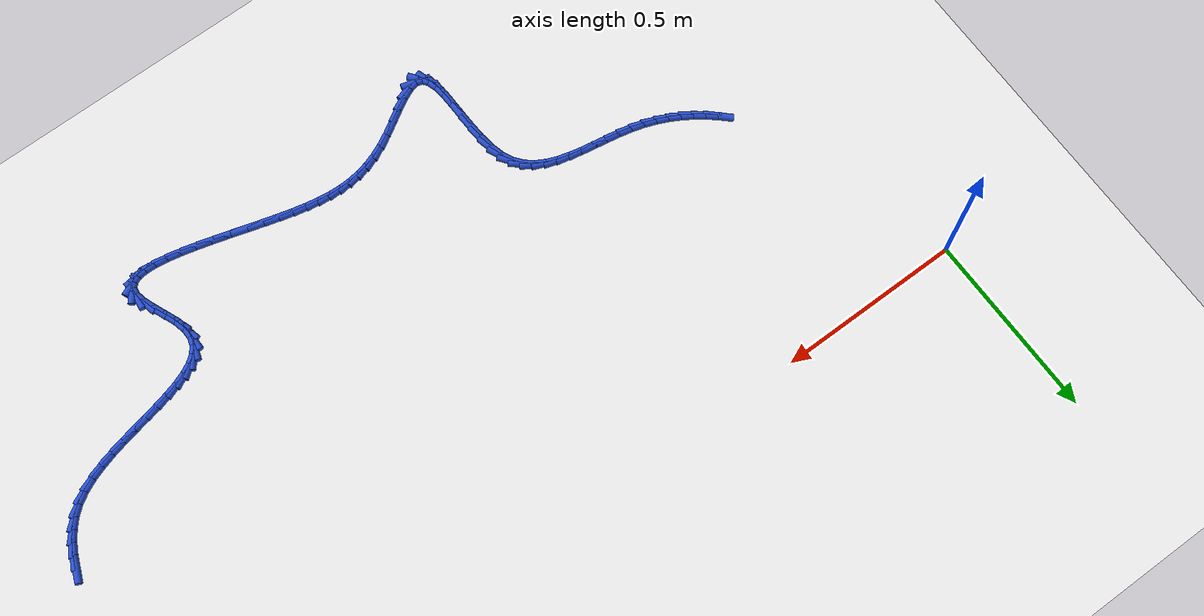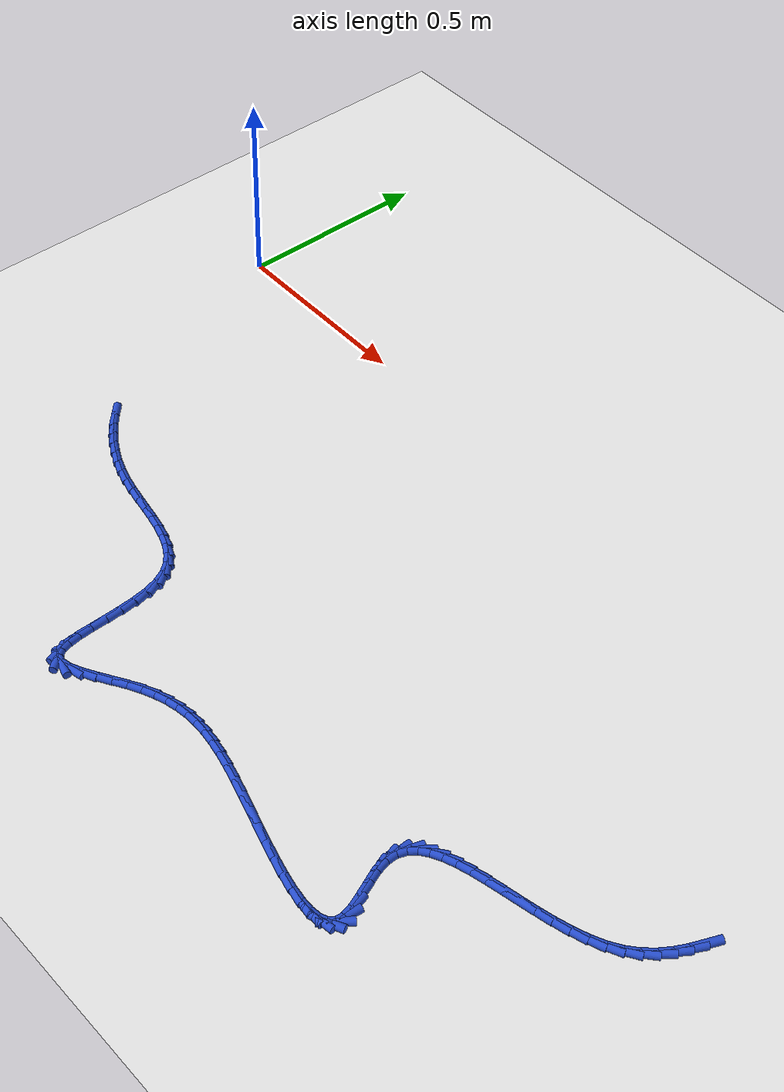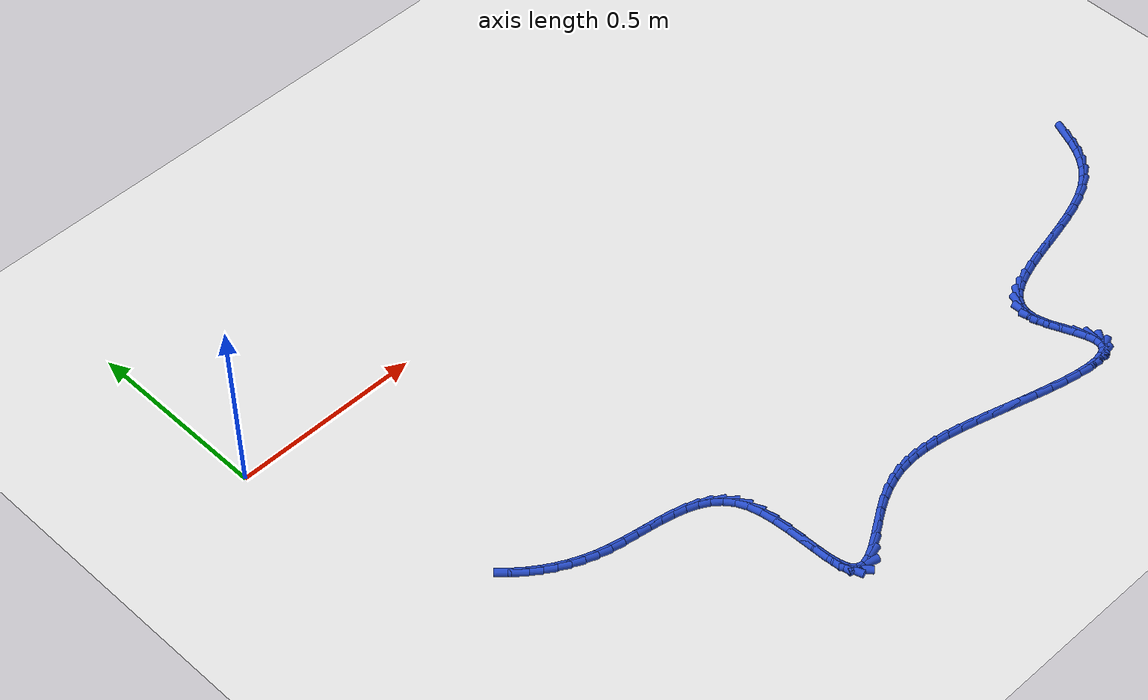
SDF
<sdf version="1.6">
 <world name="default">
  <model name="ground_plane">
   <static>1</static>
   <link name="link">
    <collision name="collision">
     <geometry><plane><normal>0 0 1</normal><size>100 100</size></plane></geometry>
     <surface><friction><ode><mu>100</mu><mu2>50</mu2></ode></friction></surface>
    </collision>
    <visual name="visual">
     <cast_shadows>0</cast_shadows>
     <geometry><plane><normal>0 0 1</normal><size>100 100</size></plane></geometry>
     <material>
      <script><uri>file://media/materials/scripts/gazebo.material</uri><name>Gazebo/WhiteGlow</name></script>
     </material>
    </visual>
   </link>
  </model>
  <model name="line">
   <link name="link_145">
    <pose>2.200022482165315 -0.6206383247628776 0.01 0 1.57 1.1768772257016513</pose>
    <collision name="collision">
     <geometry><cylinder><radius>0.01</radius><length>0.08</length></cylinder></geometry>
    </collision>
    <visual name="visual">
     <material>
      <script><name>Gazebo/Blue</name><uri>file://media/materials/scripts/gazebo.material</uri></script>
     </material>
     <geometry><cylinder><radius>0.01</radius><length>0.08</length></cylinder></geometry>
    </visual>
   </link>
   <link name="link_146">
    <pose>2.187884925814265 -0.6498401591014769 0.01 0 1.57 1.0892584199540072</pose>
    <collision name="collision">
     <geometry><cylinder><radius>0.01</radius><length>0.08</length></cylinder></geometry>
    </collision>
    <visual name="visual">
     <material>
      <script><name>Gazebo/Blue</name><uri>file://media/materials/scripts/gazebo.material</uri></script>
     </material>
     <geometry><cylinder><radius>0.01</radius><length>0.08</length></cylinder></geometry>
    </visual>
   </link>
   <link name="link_147">
    <pose>2.1732663746896717 -0.6778146523762547 0.01 0 1.57 0.982221564828243</pose>
    <collision name="collision">
     <geometry><cylinder><radius>0.01</radius><length>0.08</length></cylinder></geometry>
    </collision>
    <visual name="visual">
     <material>
      <script><name>Gazebo/Blue</name><uri>file://media/materials/scripts/gazebo.material</uri></script>
     </material>
     <geometry><cylinder><radius>0.01</radius><length>0.08</length></cylinder></geometry>
    </visual>
   </link>
   <link name="link_148">
    <pose>2.1557402777176877 -0.7040712357389001 0.01 0 1.57 0.8562664024261886</pose>
    <collision name="collision">
     <geometry><cylinder><radius>0.01</radius><length>0.08</length></cylinder></geometry>
    </collision>
    <visual name="visual">
     <material>
      <script><name>Gazebo/Blue</name><uri>file://media/materials/scripts/gazebo.material</uri></script>
     </material>
     <geometry><cylinder><radius>0.01</radius><length>0.08</length></cylinder></geometry>
    </visual>
   </link>
   <link name="link_149">
    <pose>2.134880083824467 -0.7281193403411019 0.01 0 1.57 0.7143456421942435</pose>
    <collision name="collision">
     <geometry><cylinder><radius>0.01</radius><length>0.08</length></cylinder></geometry>
    </collision>
    <visual name="visual">
     <material>
      <script><name>Gazebo/Blue</name><uri>file://media/materials/scripts/gazebo.material</uri></script>
     </material>
     <geometry><cylinder><radius>0.01</radius><length>0.08</length></cylinder></geometry>
    </visual>
   </link>
   <link name="link_150">
    <pose>2.110259241936164 -0.7494683973345496 0.01 0 1.57 0.5661594965031077</pose>
    <collision name="collision">
     <geometry><cylinder><radius>0.01</radius><length>0.08</length></cylinder></geometry>
    </collision>
    <visual name="visual">
     <material>
      <script><name>Gazebo/Blue</name><uri>file://media/materials/scripts/gazebo.material</uri></script>
     </material>
     <geometry><cylinder><radius>0.01</radius><length>0.08</length></cylinder></geometry>
    </visual>
   </link>
   <link name="link_151">
    <pose>2.081555521179482 -0.7677114343285509 0.01 0 1.57 0.44309876914996227</pose>
    <collision name="collision">
     <geometry><cylinder><radius>0.01</radius><length>0.08</length></cylinder></geometry>
    </collision>
    <visual name="visual">
     <material>
      <script><name>Gazebo/Blue</name><uri>file://media/materials/scripts/gazebo.material</uri></script>
     </material>
     <geometry><cylinder><radius>0.01</radius><length>0.08</length></cylinder></geometry>
    </visual>
   </link>
   <link name="link_152">
    <pose>2.049216699643901 -0.7830585216651116 0.01 0 1.57 0.35238683183108166</pose>
    <collision name="collision">
     <geometry><cylinder><radius>0.01</radius><length>0.08</length></cylinder></geometry>
    </collision>
    <visual name="visual">
     <material>
      <script><name>Gazebo/Blue</name><uri>file://media/materials/scripts/gazebo.material</uri></script>
     </material>
     <geometry><cylinder><radius>0.01</radius><length>0.08</length></cylinder></geometry>
    </visual>
   </link>
   <link name="link_153">
    <pose>2.0140352916266697 -0.795995982278073 0.01 0 1.57 0.28766978232681134</pose>
    <collision name="collision">
     <geometry><cylinder><radius>0.01</radius><length>0.08</length></cylinder></geometry>
    </collision>
    <visual name="visual">
     <material>
      <script><name>Gazebo/Blue</name><uri>file://media/materials/scripts/gazebo.material</uri></script>
     </material>
     <geometry><cylinder><radius>0.01</radius><length>0.08</length></cylinder></geometry>
    </visual>
   </link>
   <link name="link_154">
    <pose>1.9768054293250379 -0.8070114355971424 0.01 0 1.57 0.2440006502419656</pose>
    <collision name="collision">
     <geometry><cylinder><radius>0.01</radius><length>0.08</length></cylinder></geometry>
    </collision>
    <visual name="visual">
     <material>
      <script><name>Gazebo/Blue</name><uri>file://media/materials/scripts/gazebo.material</uri></script>
     </material>
     <geometry><cylinder><radius>0.01</radius><length>0.08</length></cylinder></geometry>
    </visual>
   </link>
   <link name="link_155">
    <pose>1.938321244936255 -0.8165925010520273 0.01 0 1.57 0.21817930192003523</pose>
    <collision name="collision">
     <geometry><cylinder><radius>0.01</radius><length>0.08</length></cylinder></geometry>
    </collision>
    <visual name="visual">
     <material>
      <script><name>Gazebo/Blue</name><uri>file://media/materials/scripts/gazebo.material</uri></script>
     </material>
     <geometry><cylinder><radius>0.01</radius><length>0.08</length></cylinder></geometry>
    </visual>
   </link>
   <link name="link_156">
    <pose>1.8993768706575718 -0.8252267980724354 0.01 0 1.57 0.2086525430279309</pose>
    <collision name="collision">
     <geometry><cylinder><radius>0.01</radius><length>0.08</length></cylinder></geometry>
    </collision>
    <visual name="visual">
     <material>
      <script><name>Gazebo/Blue</name><uri>file://media/materials/scripts/gazebo.material</uri></script>
     </material>
     <geometry><cylinder><radius>0.01</radius><length>0.08</length></cylinder></geometry>
    </visual>
   </link>
   <link name="link_157">
    <pose>1.8607664386862368 -0.8334019460880737 0.01 0 1.57 0.21546852170306519</pose>
    <collision name="collision">
     <geometry><cylinder><radius>0.01</radius><length>0.08</length></cylinder></geometry>
    </collision>
    <visual name="visual">
     <material>
      <script><name>Gazebo/Blue</name><uri>file://media/materials/scripts/gazebo.material</uri></script>
     </material>
     <geometry><cylinder><radius>0.01</radius><length>0.08</length></cylinder></geometry>
    </visual>
   </link>
   <link name="link_158">
    <pose>1.8232840812195008 -0.8416055645286503 0.01 0 1.57 0.24046547054014067</pose>
    <collision name="collision">
     <geometry><cylinder><radius>0.01</radius><length>0.08</length></cylinder></geometry>
    </collision>
    <visual name="visual">
     <material>
      <script><name>Gazebo/Blue</name><uri>file://media/materials/scripts/gazebo.material</uri></script>
     </material>
     <geometry><cylinder><radius>0.01</radius><length>0.08</length></cylinder></geometry>
    </visual>
   </link>
   <link name="link_159">
    <pose>1.7877239304546126 -0.8503252728238723 0.01 0 1.57 0.2878292113030736</pose>
    <collision name="collision">
     <geometry><cylinder><radius>0.01</radius><length>0.08</length></cylinder></geometry>
    </collision>
    <visual name="visual">
     <material>
      <script><name>Gazebo/Blue</name><uri>file://media/materials/scripts/gazebo.material</uri></script>
     </material>
     <geometry><cylinder><radius>0.01</radius><length>0.08</length></cylinder></geometry>
    </visual>
   </link>
   <link name="link_160">
    <pose>1.7548801185888234 -0.8600486904034472 0.01 0 1.57 0.36517340735094894</pose>
    <collision name="collision">
     <geometry><cylinder><radius>0.01</radius><length>0.08</length></cylinder></geometry>
    </collision>
    <visual name="visual">
     <material>
      <script><name>Gazebo/Blue</name><uri>file://media/materials/scripts/gazebo.material</uri></script>
     </material>
     <geometry><cylinder><radius>0.01</radius><length>0.08</length></cylinder></geometry>
    </visual>
   </link>
   <link name="link_161">
    <pose>1.7255467778193814 -0.8712634366970828 0.01 0 1.57 0.4851245636352757</pose>
    <collision name="collision">
     <geometry><cylinder><radius>0.01</radius><length>0.08</length></cylinder></geometry>
    </collision>
    <visual name="visual">
     <material>
      <script><name>Gazebo/Blue</name><uri>file://media/materials/scripts/gazebo.material</uri></script>
     </material>
     <geometry><cylinder><radius>0.01</radius><length>0.08</length></cylinder></geometry>
    </visual>
   </link>
   <link name="link_162">
    <pose>1.7005180403435367 -0.8844571311344862 0.01 0 1.57 0.6659994763202128</pose>
    <collision name="collision">
     <geometry><cylinder><radius>0.01</radius><length>0.08</length></cylinder></geometry>
    </collision>
    <visual name="visual">
     <material>
      <script><name>Gazebo/Blue</name><uri>file://media/materials/scripts/gazebo.material</uri></script>
     </material>
     <geometry><cylinder><radius>0.01</radius><length>0.08</length></cylinder></geometry>
    </visual>
   </link>
   <link name="link_163">
    <pose>1.6805880383585399 -0.900117393145365 0.01 0 1.57 0.9246771211898439</pose>
    <collision name="collision">
     <geometry><cylinder><radius>0.01</radius><length>0.08</length></cylinder></geometry>
    </collision>
    <visual name="visual">
     <material>
      <script><name>Gazebo/Blue</name><uri>file://media/materials/scripts/gazebo.material</uri></script>
     </material>
     <geometry><cylinder><radius>0.01</radius><length>0.08</length></cylinder></geometry>
    </visual>
   </link>
   <link name="link_164">
    <pose>1.6665509040616397 -0.9187318421594267 0.01 0 1.57 1.2491253738642776</pose>
    <collision name="collision">
     <geometry><cylinder><radius>0.01</radius><length>0.08</length></cylinder></geometry>
    </collision>
    <visual name="visual">
     <material>
      <script><name>Gazebo/Blue</name><uri>file://media/materials/scripts/gazebo.material</uri></script>
     </material>
     <geometry><cylinder><radius>0.01</radius><length>0.08</length></cylinder></geometry>
    </visual>
   </link>
   <link name="link_165">
    <pose>1.6592007696500866 -0.9407880976063789 0.01 0 1.57 -1.5657613924147131</pose>
    <collision name="collision">
     <geometry><cylinder><radius>0.01</radius><length>0.08</length></cylinder></geometry>
    </collision>
    <visual name="visual">
     <material>
      <script><name>Gazebo/Blue</name><uri>file://media/materials/scripts/gazebo.material</uri></script>
     </material>
     <geometry><cylinder><radius>0.01</radius><length>0.08</length></cylinder></geometry>
    </visual>
   </link>
   <link name="link_166">
    <pose>1.6593316064376815 -0.9667736759909895 0.01 0 1.57 -1.3225732564504955</pose>
    <collision name="collision">
     <geometry><cylinder><radius>0.01</radius><length>0.08</length></cylinder></geometry>
    </collision>
    <visual name="visual">
     <material>
      <script><name>Gazebo/Blue</name><uri>file://media/materials/scripts/gazebo.material</uri></script>
     </material>
     <geometry><cylinder><radius>0.01</radius><length>0.08</length></cylinder></geometry>
    </visual>
   </link>
   <link name="link_167">
    <pose>1.6669015775357645 -0.9966413868021411 0.01 0 1.57 -1.2061961937308643</pose>
    <collision name="collision">
     <geometry><cylinder><radius>0.01</radius><length>0.08</length></cylinder></geometry>
    </collision>
    <visual name="visual">
     <material>
      <script><name>Gazebo/Blue</name><uri>file://media/materials/scripts/gazebo.material</uri></script>
     </material>
     <geometry><cylinder><radius>0.01</radius><length>0.08</length></cylinder></geometry>
    </visual>
   </link>
   <link name="link_168">
    <pose>1.6790849126422474 -1.0285630223963946 0.01 0 1.57 -1.1719469797630064</pose>
    <collision name="collision">
     <geometry><cylinder><radius>0.01</radius><length>0.08</length></cylinder></geometry>
    </collision>
    <visual name="visual">
     <material>
      <script><name>Gazebo/Blue</name><uri>file://media/materials/scripts/gazebo.material</uri></script>
     </material>
     <geometry><cylinder><radius>0.01</radius><length>0.08</length></cylinder></geometry>
    </visual>
   </link>
   <link name="link_169">
    <pose>1.692476931745918 -1.060340018531607 0.01 0 1.57 -1.207317392395971</pose>
    <collision name="collision">
     <geometry><cylinder><radius>0.01</radius><length>0.08</length></cylinder></geometry>
    </collision>
    <visual name="visual">
     <material>
      <script><name>Gazebo/Blue</name><uri>file://media/materials/scripts/gazebo.material</uri></script>
     </material>
     <geometry><cylinder><radius>0.01</radius><length>0.08</length></cylinder></geometry>
    </visual>
   </link>
   <link name="link_170">
    <pose>1.703672954835563 -1.0897738109656336 0.01 0 1.57 -1.349668636895052</pose>
    <collision name="collision">
     <geometry><cylinder><radius>0.01</radius><length>0.08</length></cylinder></geometry>
    </collision>
    <visual name="visual">
     <material>
      <script><name>Gazebo/Blue</name><uri>file://media/materials/scripts/gazebo.material</uri></script>
     </material>
     <geometry><cylinder><radius>0.01</radius><length>0.08</length></cylinder></geometry>
    </visual>
   </link>
   <link name="link_171">
    <pose>1.7092688596810879 -1.1146662051751648 0.01 0 1.57 1.4388265298776004</pose>
    <collision name="collision">
     <geometry><cylinder><radius>0.01</radius><length>0.08</length></cylinder></geometry>
    </collision>
    <visual name="visual">
     <material>
      <script><name>Gazebo/Blue</name><uri>file://media/materials/scripts/gazebo.material</uri></script>
     </material>
     <geometry><cylinder><radius>0.01</radius><length>0.08</length></cylinder></geometry>
    </visual>
   </link>
   <link name="link_172">
    <pose>1.7067784670053021 -1.1334274546217162 0.01 0 1.57 0.8977898716361632</pose>
    <collision name="collision">
     <geometry><cylinder><radius>0.01</radius><length>0.08</length></cylinder></geometry>
    </collision>
    <visual name="visual">
     <material>
      <script><name>Gazebo/Blue</name><uri>file://media/materials/scripts/gazebo.material</uri></script>
     </material>
     <geometry><cylinder><radius>0.01</radius><length>0.08</length></cylinder></geometry>
    </visual>
   </link>
   <link name="link_173">
    <pose>1.6965041201374753 -1.1463161530750723 0.01 0 1.57 0.4166406043405231</pose>
    <collision name="collision">
     <geometry><cylinder><radius>0.01</radius><length>0.08</length></cylinder></geometry>
    </collision>
    <visual name="visual">
     <material>
      <script><name>Gazebo/Blue</name><uri>file://media/materials/scripts/gazebo.material</uri></script>
     </material>
     <geometry><cylinder><radius>0.01</radius><length>0.08</length></cylinder></geometry>
    </visual>
   </link>
   <link name="link_174">
    <pose>1.6792757093667234 -1.1539405727720784 0.01 0 1.57 0.12643477937515146</pose>
    <collision name="collision">
     <geometry><cylinder><radius>0.01</radius><length>0.08</length></cylinder></geometry>
    </collision>
    <visual name="visual">
     <material>
      <script><name>Gazebo/Blue</name><uri>file://media/materials/scripts/gazebo.material</uri></script>
     </material>
     <geometry><cylinder><radius>0.01</radius><length>0.08</length></cylinder></geometry>
    </visual>
   </link>
   <link name="link_175">
    <pose>1.6559231249821653 -1.1569089859495816 0.01 0 1.57 -0.03765894540971257</pose>
    <collision name="collision">
     <geometry><cylinder><radius>0.01</radius><length>0.08</length></cylinder></geometry>
    </collision>
    <visual name="visual">
     <material>
      <script><name>Gazebo/Blue</name><uri>file://media/materials/scripts/gazebo.material</uri></script>
     </material>
     <geometry><cylinder><radius>0.01</radius><length>0.08</length></cylinder></geometry>
    </visual>
   </link>
   <link name="link_176">
    <pose>1.6272762572729187 -1.1558296648444273 0.01 0 1.57 -0.1356347849410388</pose>
    <collision name="collision">
     <geometry><cylinder><radius>0.01</radius><length>0.08</length></cylinder></geometry>
    </collision>
    <visual name="visual">
     <material>
      <script><name>Gazebo/Blue</name><uri>file://media/materials/scripts/gazebo.material</uri></script>
     </material>
     <geometry><cylinder><radius>0.01</radius><length>0.08</length></cylinder></geometry>
    </visual>
   </link>
   <link name="link_177">
    <pose>1.5941649965280997 -1.1513108816934616 0.01 0 1.57 -0.1974170238144184</pose>
    <collision name="collision">
     <geometry><cylinder><radius>0.01</radius><length>0.08</length></cylinder></geometry>
    </collision>
    <visual name="visual">
     <material>
      <script><name>Gazebo/Blue</name><uri>file://media/materials/scripts/gazebo.material</uri></script>
     </material>
     <geometry><cylinder><radius>0.01</radius><length>0.08</length></cylinder></geometry>
    </visual>
   </link>
   <link name="link_178">
    <pose>1.5574192330368262 -1.1439609087335305 0.01 0 1.57 -0.2374757887787337</pose>
    <collision name="collision">
     <geometry><cylinder><radius>0.01</radius><length>0.08</length></cylinder></geometry>
    </collision>
    <visual name="visual">
     <material>
      <script><name>Gazebo/Blue</name><uri>file://media/materials/scripts/gazebo.material</uri></script>
     </material>
     <geometry><cylinder><radius>0.01</radius><length>0.08</length></cylinder></geometry>
    </visual>
   </link>
   <link name="link_179">
    <pose>1.5178688570882164 -1.13438801820148 0.01 0 1.57 -0.26316766063679037</pose>
    <collision name="collision">
     <geometry><cylinder><radius>0.01</radius><length>0.08</length></cylinder></geometry>
    </collision>
    <visual name="visual">
     <material>
      <script><name>Gazebo/Blue</name><uri>file://media/materials/scripts/gazebo.material</uri></script>
     </material>
     <geometry><cylinder><radius>0.01</radius><length>0.08</length></cylinder></geometry>
    </visual>
   </link>
   <link name="link_180">
    <pose>1.4763437589713866 -1.1232004823341557 0.01 0 1.57 -0.27835383417269804</pose>
    <collision name="collision">
     <geometry><cylinder><radius>0.01</radius><length>0.08</length></cylinder></geometry>
    </collision>
    <visual name="visual">
     <material>
      <script><name>Gazebo/Blue</name><uri>file://media/materials/scripts/gazebo.material</uri></script>
     </material>
     <geometry><cylinder><radius>0.01</radius><length>0.08</length></cylinder></geometry>
    </visual>
   </link>
   <link name="link_181">
    <pose>1.4336738289754556 -1.111006573368404 0.01 0 1.57 -0.2849676727593381</pose>
    <collision name="collision">
     <geometry><cylinder><radius>0.01</radius><length>0.08</length></cylinder></geometry>
    </collision>
    <visual name="visual">
     <material>
      <script><name>Gazebo/Blue</name><uri>file://media/materials/scripts/gazebo.material</uri></script>
     </material>
     <geometry><cylinder><radius>0.01</radius><length>0.08</length></cylinder></geometry>
    </visual>
   </link>
   <link name="link_182">
    <pose>1.3906889573895405 -1.0984145635410711 0.01 0 1.57 -0.28368077927309826</pose>
    <collision name="collision">
     <geometry><cylinder><radius>0.01</radius><length>0.08</length></cylinder></geometry>
    </collision>
    <visual name="visual">
     <material>
      <script><name>Gazebo/Blue</name><uri>file://media/materials/scripts/gazebo.material</uri></script>
     </material>
     <geometry><cylinder><radius>0.01</radius><length>0.08</length></cylinder></geometry>
    </visual>
   </link>
   <link name="link_183">
    <pose>1.348219034502758 -1.0860327250890023 0.01 0 1.57 -0.2740990601343615</pose>
    <collision name="collision">
     <geometry><cylinder><radius>0.01</radius><length>0.08</length></cylinder></geometry>
    </collision>
    <visual name="visual">
     <material>
      <script><name>Gazebo/Blue</name><uri>file://media/materials/scripts/gazebo.material</uri></script>
     </material>
     <geometry><cylinder><radius>0.01</radius><length>0.08</length></cylinder></geometry>
    </visual>
   </link>
   <link name="link_184">
    <pose>1.3070939506042263 -1.0744693302490438 0.01 0 1.57 -0.25460449734139057</pose>
    <collision name="collision">
     <geometry><cylinder><radius>0.01</radius><length>0.08</length></cylinder></geometry>
    </collision>
    <visual name="visual">
     <material>
      <script><name>Gazebo/Blue</name><uri>file://media/materials/scripts/gazebo.material</uri></script>
     </material>
     <geometry><cylinder><radius>0.01</radius><length>0.08</length></cylinder></geometry>
    </visual>
   </link>
   <link name="link_185">
    <pose>1.2681409449307177 -1.0643317155717076 0.01 0 1.57 -0.22298111831304085</pose>
    <collision name="collision">
     <geometry><cylinder><radius>0.01</radius><length>0.08</length></cylinder></geometry>
    </collision>
    <visual name="visual">
     <material>
      <script><name>Gazebo/Blue</name><uri>file://media/materials/scripts/gazebo.material</uri></script>
     </material>
     <geometry><cylinder><radius>0.01</radius><length>0.08</length></cylinder></geometry>
    </visual>
   </link>
   <link name="link_186">
    <pose>1.2318064061616165 -1.0560927967754654 0.01 0 1.57 -0.17845417102993097</pose>
    <collision name="collision">
     <geometry><cylinder><radius>0.01</radius><length>0.08</length></cylinder></geometry>
    </collision>
    <visual name="visual">
     <material>
      <script><name>Gazebo/Blue</name><uri>file://media/materials/scripts/gazebo.material</uri></script>
     </material>
     <geometry><cylinder><radius>0.01</radius><length>0.08</length></cylinder></geometry>
    </visual>
   </link>
   <link name="link_187">
    <pose>1.1977623162021325 -1.0499521634646414 0.01 0 1.57 -0.11988423087099662</pose>
    <collision name="collision">
     <geometry><cylinder><radius>0.01</radius><length>0.08</length></cylinder></geometry>
    </collision>
    <visual name="visual">
     <material>
      <script><name>Gazebo/Blue</name><uri>file://media/materials/scripts/gazebo.material</uri></script>
     </material>
     <geometry><cylinder><radius>0.01</radius><length>0.08</length></cylinder></geometry>
    </visual>
   </link>
   <link name="link_188">
    <pose>1.165586634663306 -1.046076220166718 0.01 0 1.57 -0.046983979501028984</pose>
    <collision name="collision">
     <geometry><cylinder><radius>0.01</radius><length>0.08</length></cylinder></geometry>
    </collision>
    <visual name="visual">
     <material>
      <script><name>Gazebo/Blue</name><uri>file://media/materials/scripts/gazebo.material</uri></script>
     </material>
     <geometry><cylinder><radius>0.01</radius><length>0.08</length></cylinder></geometry>
    </visual>
   </link>
   <link name="link_189">
    <pose>1.1348573211561772 -1.0446313714091768 0.01 0 1.57 0.03878380300001151</pose>
    <collision name="collision">
     <geometry><cylinder><radius>0.01</radius><length>0.08</length></cylinder></geometry>
    </collision>
    <visual name="visual">
     <material>
      <script><name>Gazebo/Blue</name><uri>file://media/materials/scripts/gazebo.material</uri></script>
     </material>
     <geometry><cylinder><radius>0.01</radius><length>0.08</length></cylinder></geometry>
    </visual>
   </link>
   <link name="link_190">
    <pose>1.1051523352917871 -1.0457840217195002 0.01 0 1.57 0.13377327703940442</pose>
    <collision name="collision">
     <geometry><cylinder><radius>0.01</radius><length>0.08</length></cylinder></geometry>
    </collision>
    <visual name="visual">
     <material>
      <script><name>Gazebo/Blue</name><uri>file://media/materials/scripts/gazebo.material</uri></script>
     </material>
     <geometry><cylinder><radius>0.01</radius><length>0.08</length></cylinder></geometry>
    </visual>
   </link>
   <link name="link_191">
    <pose>1.0760496366811754 -1.0497005756251696 0.01 0 1.57 0.23245242621126241</pose>
    <collision name="collision">
     <geometry><cylinder><radius>0.01</radius><length>0.08</length></cylinder></geometry>
    </collision>
    <visual name="visual">
     <material>
      <script><name>Gazebo/Blue</name><uri>file://media/materials/scripts/gazebo.material</uri></script>
     </material>
     <geometry><cylinder><radius>0.01</radius><length>0.08</length></cylinder></geometry>
    </visual>
   </link>
   <link name="link_192">
    <pose>1.0471271849353827 -1.0565474376536674 0.01 0 1.57 0.3285905955386054</pose>
    <collision name="collision">
     <geometry><cylinder><radius>0.01</radius><length>0.08</length></cylinder></geometry>
    </collision>
    <visual name="visual">
     <material>
      <script><name>Gazebo/Blue</name><uri>file://media/materials/scripts/gazebo.material</uri></script>
     </material>
     <geometry><cylinder><radius>0.01</radius><length>0.08</length></cylinder></geometry>
    </visual>
   </link>
   <link name="link_193">
    <pose>1.01796293966545 -1.0664910123324751 0.01 0 1.57 0.41681717552059033</pose>
    <collision name="collision">
     <geometry><cylinder><radius>0.01</radius><length>0.08</length></cylinder></geometry>
    </collision>
    <visual name="visual">
     <material>
      <script><name>Gazebo/Blue</name><uri>file://media/materials/scripts/gazebo.material</uri></script>
     </material>
     <geometry><cylinder><radius>0.01</radius><length>0.08</length></cylinder></geometry>
    </visual>
   </link>
   <link name="link_194">
    <pose>0.988134860482417 -1.0796977041890747 0.01 0 1.57 0.4936391427690751</pose>
    <collision name="collision">
     <geometry><cylinder><radius>0.01</radius><length>0.08</length></cylinder></geometry>
    </collision>
    <visual name="visual">
     <material>
      <script><name>Gazebo/Blue</name><uri>file://media/materials/scripts/gazebo.material</uri></script>
     </material>
     <geometry><cylinder><radius>0.01</radius><length>0.08</length></cylinder></geometry>
    </visual>
   </link>
   <link name="link_195">
    <pose>0.9572231505474054 -1.096330421988468 0.01 0 1.57 0.5470884914698513</pose>
    <collision name="collision">
     <geometry><cylinder><radius>0.01</radius><length>0.08</length></cylinder></geometry>
    </collision>
    <visual name="visual">
     <material>
      <script><name>Gazebo/Blue</name><uri>file://media/materials/scripts/gazebo.material</uri></script>
     </material>
     <geometry><cylinder><radius>0.01</radius><length>0.08</length></cylinder></geometry>
    </visual>
   </link>
   <link name="link_196">
    <pose>0.9253110356049116 -1.1157682954802832 0.01 0 1.57 0.5595911427912377</pose>
    <collision name="collision">
     <geometry><cylinder><radius>0.01</radius><length>0.08</length></cylinder></geometry>
    </collision>
    <visual name="visual">
     <material>
      <script><name>Gazebo/Blue</name><uri>file://media/materials/scripts/gazebo.material</uri></script>
     </material>
     <geometry><cylinder><radius>0.01</radius><length>0.08</length></cylinder></geometry>
    </visual>
   </link>
   <link name="link_197">
    <pose>0.8936178100125439 -1.1356203018038806 0.01 0 1.57 0.5299166378836198</pose>
    <collision name="collision">
     <geometry><cylinder><radius>0.01</radius><length>0.08</length></cylinder></geometry>
    </collision>
    <visual name="visual">
     <material>
      <script><name>Gazebo/Blue</name><uri>file://media/materials/scripts/gazebo.material</uri></script>
     </material>
     <geometry><cylinder><radius>0.01</radius><length>0.08</length></cylinder></geometry>
    </visual>
   </link>
   <link name="link_198">
    <pose>0.863518640875665 -1.1532525467190944 0.01 0 1.57 0.4401912511531098</pose>
    <collision name="collision">
     <geometry><cylinder><radius>0.01</radius><length>0.08</length></cylinder></geometry>
    </collision>
    <visual name="visual">
     <material>
      <script><name>Gazebo/Blue</name><uri>file://media/materials/scripts/gazebo.material</uri></script>
     </material>
     <geometry><cylinder><radius>0.01</radius><length>0.08</length></cylinder></geometry>
    </visual>
   </link>
   <link name="link_199">
    <pose>0.836388695299637 -1.166031135985757 0.01 0 1.57 0.22816657307638197</pose>
    <collision name="collision">
     <geometry><cylinder><radius>0.01</radius><length>0.08</length></cylinder></geometry>
    </collision>
    <visual name="visual">
     <material>
      <script><name>Gazebo/Blue</name><uri>file://media/materials/scripts/gazebo.material</uri></script>
     </material>
     <geometry><cylinder><radius>0.01</radius><length>0.08</length></cylinder></geometry>
    </visual>
   </link>
   <link name="link_200">
    <pose>0.8136031403898222 -1.171322175363702 0.01 0 1.57 -0.26639816507099173</pose>
    <collision name="collision">
     <geometry><cylinder><radius>0.01</radius><length>0.08</length></cylinder></geometry>
    </collision>
    <visual name="visual">
     <material>
      <script><name>Gazebo/Blue</name><uri>file://media/materials/scripts/gazebo.material</uri></script>
     </material>
     <geometry><cylinder><radius>0.01</radius><length>0.08</length></cylinder></geometry>
    </visual>
   </link>
   <link name="link_201">
    <pose>0.7964501648728309 -1.166641398280963 0.01 0 1.57 -0.9069381293739754</pose>
    <collision name="collision">
     <geometry><cylinder><radius>0.01</radius><length>0.08</length></cylinder></geometry>
    </collision>
    <visual name="visual">
     <material>
      <script><name>Gazebo/Blue</name><uri>file://media/materials/scripts/gazebo.material</uri></script>
     </material>
     <geometry><cylinder><radius>0.01</radius><length>0.08</length></cylinder></geometry>
    </visual>
   </link>
   <link name="link_202">
    <pose>0.7848648712796248 -1.1518322331081077 0.01 0 1.57 -1.272471529144699</pose>
    <collision name="collision">
     <geometry><cylinder><radius>0.01</radius><length>0.08</length></cylinder></geometry>
    </collision>
    <visual name="visual">
     <material>
      <script><name>Gazebo/Blue</name><uri>file://media/materials/scripts/gazebo.material</uri></script>
     </material>
     <geometry><cylinder><radius>0.01</radius><length>0.08</length></cylinder></geometry>
    </visual>
   </link>
   <link name="link_203">
    <pose>0.7777136985002567 -1.1285765150815823 0.01 0 1.57 -1.442060684395192</pose>
    <collision name="collision">
     <geometry><cylinder><radius>0.01</radius><length>0.08</length></cylinder></geometry>
    </collision>
    <visual name="visual">
     <material>
      <script><name>Gazebo/Blue</name><uri>file://media/materials/scripts/gazebo.material</uri></script>
     </material>
     <geometry><cylinder><radius>0.01</radius><length>0.08</length></cylinder></geometry>
    </visual>
   </link>
   <link name="link_204">
    <pose>0.7738339863975068 -1.0986061380806873 0.01 0 1.57 -1.5201743084941401</pose>
    <collision name="collision">
     <geometry><cylinder><radius>0.01</radius><length>0.08</length></cylinder></geometry>
    </collision>
    <visual name="visual">
     <material>
      <script><name>Gazebo/Blue</name><uri>file://media/materials/scripts/gazebo.material</uri></script>
     </material>
     <geometry><cylinder><radius>0.01</radius><length>0.08</length></cylinder></geometry>
    </visual>
   </link>
   <link name="link_205">
    <pose>0.7720630748341545 -1.0636529959847216 0.01 0 1.57 -1.54921107978923</pose>
    <collision name="collision">
     <geometry><cylinder><radius>0.01</radius><length>0.08</length></cylinder></geometry>
    </collision>
    <visual name="visual">
     <material>
      <script><name>Gazebo/Blue</name><uri>file://media/materials/scripts/gazebo.material</uri></script>
     </material>
     <geometry><cylinder><radius>0.01</radius><length>0.08</length></cylinder></geometry>
    </visual>
   </link>
   <link name="link_206">
    <pose>0.7712383036729801 -1.0254489826729856 0.01 0 1.57 -1.5445885195514657</pose>
    <collision name="collision">
     <geometry><cylinder><radius>0.01</radius><length>0.08</length></cylinder></geometry>
    </collision>
    <visual name="visual">
     <material>
      <script><name>Gazebo/Blue</name><uri>file://media/materials/scripts/gazebo.material</uri></script>
     </material>
     <geometry><cylinder><radius>0.01</radius><length>0.08</length></cylinder></geometry>
    </visual>
   </link>
   <link name="link_207">
    <pose>0.7701970127767628 -0.9857259920247792 0.01 0 1.57 -1.5096106778981733</pose>
    <collision name="collision">
     <geometry><cylinder><radius>0.01</radius><length>0.08</length></cylinder></geometry>
    </collision>
    <visual name="visual">
     <material>
      <script><name>Gazebo/Blue</name><uri>file://media/materials/scripts/gazebo.material</uri></script>
     </material>
     <geometry><cylinder><radius>0.01</radius><length>0.08</length></cylinder></geometry>
    </visual>
   </link>
   <link name="link_208">
    <pose>0.7677765420082826 -0.9462159179194023 0.01 0 1.57 -1.4394583644576437</pose>
    <collision name="collision">
     <geometry><cylinder><radius>0.01</radius><length>0.08</length></cylinder></geometry>
    </collision>
    <visual name="visual">
     <material>
      <script><name>Gazebo/Blue</name><uri>file://media/materials/scripts/gazebo.material</uri></script>
     </material>
     <geometry><cylinder><radius>0.01</radius><length>0.08</length></cylinder></geometry>
    </visual>
   </link>
   <link name="link_209">
    <pose>0.7628142312303196 -0.9086506542361558 0.01 0 1.57 -1.3204184743080105</pose>
    <collision name="collision">
     <geometry><cylinder><radius>0.01</radius><length>0.08</length></cylinder></geometry>
    </collision>
    <visual name="visual">
     <material>
      <script><name>Gazebo/Blue</name><uri>file://media/materials/scripts/gazebo.material</uri></script>
     </material>
     <geometry><cylinder><radius>0.01</radius><length>0.08</length></cylinder></geometry>
    </visual>
   </link>
   <link name="link_210">
    <pose>0.7541474203056532 -0.8747620948543372 0.01 0 1.57 -1.1321473045457369</pose>
    <collision name="collision">
     <geometry><cylinder><radius>0.01</radius><length>0.08</length></cylinder></geometry>
    </collision>
    <visual name="visual">
     <material>
      <script><name>Gazebo/Blue</name><uri>file://media/materials/scripts/gazebo.material</uri></script>
     </material>
     <geometry><cylinder><radius>0.01</radius><length>0.08</length></cylinder></geometry>
    </visual>
   </link>
   <link name="link_211">
    <pose>0.7407180598812912 -0.8461360705060326 0.01 0 1.57 -0.9063549151765911</pose>
    <collision name="collision">
     <geometry><cylinder><radius>0.01</radius><length>0.08</length></cylinder></geometry>
    </collision>
    <visual name="visual">
     <material>
      <script><name>Gazebo/Blue</name><uri>file://media/materials/scripts/gazebo.material</uri></script>
     </material>
     <geometry><cylinder><radius>0.01</radius><length>0.08</length></cylinder></geometry>
    </visual>
   </link>
   <link name="link_212">
    <pose>0.722515425740202 -0.8228960808009146 0.01 0 1.57 -0.6926279105791253</pose>
    <collision name="collision">
     <geometry><cylinder><radius>0.01</radius><length>0.08</length></cylinder></geometry>
    </collision>
    <visual name="visual">
     <material>
      <script><name>Gazebo/Blue</name><uri>file://media/materials/scripts/gazebo.material</uri></script>
     </material>
     <geometry><cylinder><radius>0.01</radius><length>0.08</length></cylinder></geometry>
    </visual>
   </link>
   <link name="link_213">
    <pose>0.7001321213347631 -0.8043232271308606 0.01 0 1.57 -0.5132645921524098</pose>
    <collision name="collision">
     <geometry><cylinder><radius>0.01</radius><length>0.08</length></cylinder></geometry>
    </collision>
    <visual name="visual">
     <material>
      <script><name>Gazebo/Blue</name><uri>file://media/materials/scripts/gazebo.material</uri></script>
     </material>
     <geometry><cylinder><radius>0.01</radius><length>0.08</length></cylinder></geometry>
    </visual>
   </link>
   <link name="link_214">
    <pose>0.6741680028042417 -0.7896884843001223 0.01 0 1.57 -0.37596002990791527</pose>
    <collision name="collision">
     <geometry><cylinder><radius>0.01</radius><length>0.08</length></cylinder></geometry>
    </collision>
    <visual name="visual">
     <material>
      <script><name>Gazebo/Blue</name><uri>file://media/materials/scripts/gazebo.material</uri></script>
     </material>
     <geometry><cylinder><radius>0.01</radius><length>0.08</length></cylinder></geometry>
    </visual>
   </link>
   <link name="link_215">
    <pose>0.645222926287905 -0.7782628271129524 0.01 0 1.57 -0.2781597638721324</pose>
    <collision name="collision">
     <geometry><cylinder><radius>0.01</radius><length>0.08</length></cylinder></geometry>
    </collision>
    <visual name="visual">
     <material>
      <script><name>Gazebo/Blue</name><uri>file://media/materials/scripts/gazebo.material</uri></script>
     </material>
     <geometry><cylinder><radius>0.01</radius><length>0.08</length></cylinder></geometry>
    </visual>
   </link>
   <link name="link_216">
    <pose>0.6138967479250201 -0.7693172303736027 0.01 0 1.57 -0.2139826766096427</pose>
    <collision name="collision">
     <geometry><cylinder><radius>0.01</radius><length>0.08</length></cylinder></geometry>
    </collision>
    <visual name="visual">
     <material>
      <script><name>Gazebo/Blue</name><uri>file://media/materials/scripts/gazebo.material</uri></script>
     </material>
     <geometry><cylinder><radius>0.01</radius><length>0.08</length></cylinder></geometry>
    </visual>
   </link>
   <link name="link_217">
    <pose>0.5807893238548546 -0.7621226688863255 0.01 0 1.57 -0.17810889806477861</pose>
    <collision name="collision">
     <geometry><cylinder><radius>0.01</radius><length>0.08</length></cylinder></geometry>
    </collision>
    <visual name="visual">
     <material>
      <script><name>Gazebo/Blue</name><uri>file://media/materials/scripts/gazebo.material</uri></script>
     </material>
     <geometry><cylinder><radius>0.01</radius><length>0.08</length></cylinder></geometry>
    </visual>
   </link>
   <link name="link_218">
    <pose>0.5465005102166753 -0.755950117455373 0.01 0 1.57 -0.1670410472378225</pose>
    <collision name="collision">
     <geometry><cylinder><radius>0.01</radius><length>0.08</length></cylinder></geometry>
    </collision>
    <visual name="visual">
     <material>
      <script><name>Gazebo/Blue</name><uri>file://media/materials/scripts/gazebo.material</uri></script>
     </material>
     <geometry><cylinder><radius>0.01</radius><length>0.08</length></cylinder></geometry>
    </visual>
   </link>
   <link name="link_219">
    <pose>0.5116301631497495 -0.7500705508849974 0.01 0 1.57 -0.1792667051408047</pose>
    <collision name="collision">
     <geometry><cylinder><radius>0.01</radius><length>0.08</length></cylinder></geometry>
    </collision>
    <visual name="visual">
     <material>
      <script><name>Gazebo/Blue</name><uri>file://media/materials/scripts/gazebo.material</uri></script>
     </material>
     <geometry><cylinder><radius>0.01</radius><length>0.08</length></cylinder></geometry>
    </visual>
   </link>
   <link name="link_220">
    <pose>0.47677813879334474 -0.7437549439794506 0.01 0 1.57 -0.21513519582275725</pose>
    <collision name="collision">
     <geometry><cylinder><radius>0.01</radius><length>0.08</length></cylinder></geometry>
    </collision>
    <visual name="visual">
     <material>
      <script><name>Gazebo/Blue</name><uri>file://media/materials/scripts/gazebo.material</uri></script>
     </material>
     <geometry><cylinder><radius>0.01</radius><length>0.08</length></cylinder></geometry>
    </visual>
   </link>
   <link name="link_221">
    <pose>0.44254429328672806 -0.7362742715429854 0.01 0 1.57 -0.27604381066092687</pose>
    <collision name="collision">
     <geometry><cylinder><radius>0.01</radius><length>0.08</length></cylinder></geometry>
    </collision>
    <visual name="visual">
     <material>
      <script><name>Gazebo/Blue</name><uri>file://media/materials/scripts/gazebo.material</uri></script>
     </material>
     <geometry><cylinder><radius>0.01</radius><length>0.08</length></cylinder></geometry>
    </visual>
   </link>
   <link name="link_222">
    <pose>0.40951517932559156 -0.7269179210792319 0.01 0 1.57 -0.35042926050908857</pose>
    <collision name="collision">
     <geometry><cylinder><radius>0.01</radius><length>0.08</length></cylinder></geometry>
    </collision>
    <visual name="visual">
     <material>
      <script><name>Gazebo/Blue</name><uri>file://media/materials/scripts/gazebo.material</uri></script>
     </material>
     <geometry><cylinder><radius>0.01</radius><length>0.08</length></cylinder></geometry>
    </visual>
   </link>
   <link name="link_223">
    <pose>0.37797742178911325 -0.7153903967260601 0.01 0 1.57 -0.42446598803815067</pose>
    <collision name="collision">
     <geometry><cylinder><radius>0.01</radius><length>0.08</length></cylinder></geometry>
    </collision>
    <visual name="visual">
     <material>
      <script><name>Gazebo/Blue</name><uri>file://media/materials/scripts/gazebo.material</uri></script>
     </material>
     <geometry><cylinder><radius>0.01</radius><length>0.08</length></cylinder></geometry>
    </visual>
   </link>
   <link name="link_224">
    <pose>0.347921041590962 -0.7018067188625305 0.01 0 1.57 -0.4968806390633753</pose>
    <collision name="collision">
     <geometry><cylinder><radius>0.01</radius><length>0.08</length></cylinder></geometry>
    </collision>
    <visual name="visual">
     <material>
      <script><name>Gazebo/Blue</name><uri>file://media/materials/scripts/gazebo.material</uri></script>
     </material>
     <geometry><cylinder><radius>0.01</radius><length>0.08</length></cylinder></geometry>
    </visual>
   </link>
   <link name="link_225">
    <pose>0.3193234209973131 -0.6862994004526533 0.01 0 1.57 -0.5670925598024021</pose>
    <collision name="collision">
     <geometry><cylinder><radius>0.01</radius><length>0.08</length></cylinder></geometry>
    </collision>
    <visual name="visual">
     <material>
      <script><name>Gazebo/Blue</name><uri>file://media/materials/scripts/gazebo.material</uri></script>
     </material>
     <geometry><cylinder><radius>0.01</radius><length>0.08</length></cylinder></geometry>
    </visual>
   </link>
   <link name="link_226">
    <pose>0.292161942274342 -0.669000954460437 0.01 0 1.57 -0.6346461247478985</pose>
    <collision name="collision">
     <geometry><cylinder><radius>0.01</radius><length>0.08</length></cylinder></geometry>
    </collision>
    <visual name="visual">
     <material>
      <script><name>Gazebo/Blue</name><uri>file://media/materials/scripts/gazebo.material</uri></script>
     </material>
     <geometry><cylinder><radius>0.01</radius><length>0.08</length></cylinder></geometry>
    </visual>
   </link>
   <link name="link_227">
    <pose>0.26641398768822394 -0.6500438938498917 0.01 0 1.57 -0.6992190202092178</pose>
    <collision name="collision">
     <geometry><cylinder><radius>0.01</radius><length>0.08</length></cylinder></geometry>
    </collision>
    <visual name="visual">
     <material>
      <script><name>Gazebo/Blue</name><uri>file://media/materials/scripts/gazebo.material</uri></script>
     </material>
     <geometry><cylinder><radius>0.01</radius><length>0.08</length></cylinder></geometry>
    </visual>
   </link>
   <link name="link_228">
    <pose>0.24205693950513435 -0.6295607315850276 0.01 0 1.57 -0.7606178605951063</pose>
    <collision name="collision">
     <geometry><cylinder><radius>0.01</radius><length>0.08</length></cylinder></geometry>
    </collision>
    <visual name="visual">
     <material>
      <script><name>Gazebo/Blue</name><uri>file://media/materials/scripts/gazebo.material</uri></script>
     </material>
     <geometry><cylinder><radius>0.01</radius><length>0.08</length></cylinder></geometry>
    </visual>
   </link>
  </model>
 </world>
</sdf>
